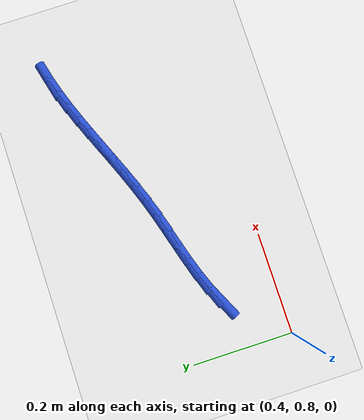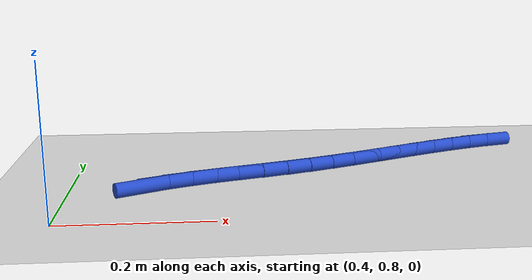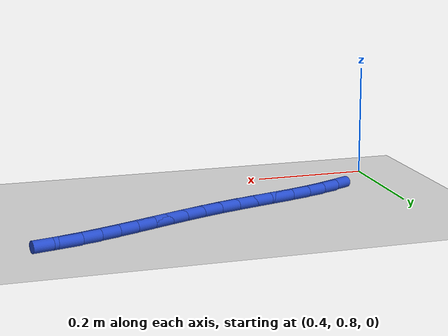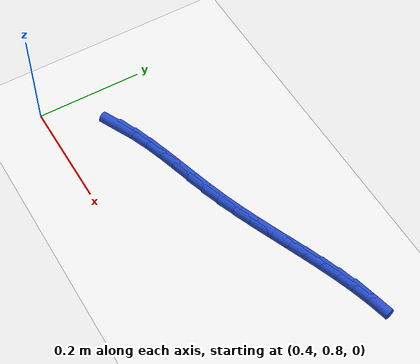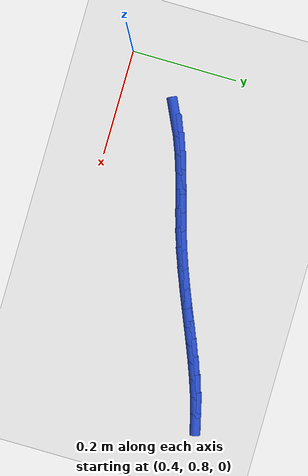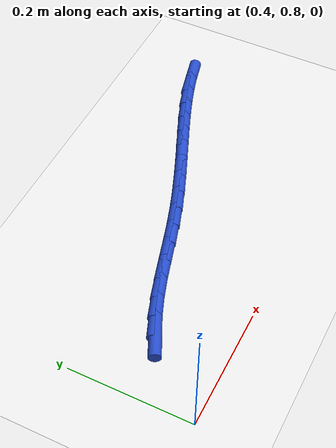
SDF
<sdf version="1.6">
 <world name="default">
  <model name="ground_plane">
   <static>1</static>
   <link name="link">
    <collision name="collision">
     <geometry><plane><normal>0 0 1</normal><size>100 100</size></plane></geometry>
     <surface><friction><ode><mu>100</mu><mu2>50</mu2></ode></friction></surface>
    </collision>
    <visual name="visual">
     <cast_shadows>0</cast_shadows>
     <geometry><plane><normal>0 0 1</normal><size>100 100</size></plane></geometry>
     <material>
      <script><uri>file://media/materials/scripts/gazebo.material</uri><name>Gazebo/WhiteGlow</name></script>
     </material>
    </visual>
   </link>
  </model>
  <model name="line">
   <link name="link_32">
    <pose>0.5011973215342357 0.9113910012589488 0.01 0 1.57 0.4440254572823883</pose>
    <collision name="collision">
     <geometry><cylinder><radius>0.01</radius><length>0.08</length></cylinder></geometry>
    </collision>
    <visual name="visual">
     <material>
      <script><name>Gazebo/Blue</name><uri>file://media/materials/scripts/gazebo.material</uri></script>
     </material>
     <geometry><cylinder><radius>0.01</radius><length>0.08</length></cylinder></geometry>
    </visual>
   </link>
   <link name="link_33">
    <pose>0.5308166340523185 0.9254811311918286 0.01 0 1.57 0.37022620268007017</pose>
    <collision name="collision">
     <geometry><cylinder><radius>0.01</radius><length>0.08</length></cylinder></geometry>
    </collision>
    <visual name="visual">
     <material>
      <script><name>Gazebo/Blue</name><uri>file://media/materials/scripts/gazebo.material</uri></script>
     </material>
     <geometry><cylinder><radius>0.01</radius><length>0.08</length></cylinder></geometry>
    </visual>
   </link>
   <link name="link_34">
    <pose>0.5622957133014537 0.9376988989818918 0.01 0 1.57 0.31965790612082406</pose>
    <collision name="collision">
     <geometry><cylinder><radius>0.01</radius><length>0.08</length></cylinder></geometry>
    </collision>
    <visual name="visual">
     <material>
      <script><name>Gazebo/Blue</name><uri>file://media/materials/scripts/gazebo.material</uri></script>
     </material>
     <geometry><cylinder><radius>0.01</radius><length>0.08</length></cylinder></geometry>
    </visual>
   </link>
   <link name="link_35">
    <pose>0.5951785181569779 0.9485834291795345 0.01 0 1.57 0.28986337622023794</pose>
    <collision name="collision">
     <geometry><cylinder><radius>0.01</radius><length>0.08</length></cylinder></geometry>
    </collision>
    <visual name="visual">
     <material>
      <script><name>Gazebo/Blue</name><uri>file://media/materials/scripts/gazebo.material</uri></script>
     </material>
     <geometry><cylinder><radius>0.01</radius><length>0.08</length></cylinder></geometry>
    </visual>
   </link>
   <link name="link_36">
    <pose>0.6290090074942277 0.9586738463351536 0.01 0 1.57 0.27908347972789876</pose>
    <collision name="collision">
     <geometry><cylinder><radius>0.01</radius><length>0.08</length></cylinder></geometry>
    </collision>
    <visual name="visual">
     <material>
      <script><name>Gazebo/Blue</name><uri>file://media/materials/scripts/gazebo.material</uri></script>
     </material>
     <geometry><cylinder><radius>0.01</radius><length>0.08</length></cylinder></geometry>
    </visual>
   </link>
   <link name="link_37">
    <pose>0.6633311401885407 0.9685092749991465 0.01 0 1.57 0.2864357706763916</pose>
    <collision name="collision">
     <geometry><cylinder><radius>0.01</radius><length>0.08</length></cylinder></geometry>
    </collision>
    <visual name="visual">
     <material>
      <script><name>Gazebo/Blue</name><uri>file://media/materials/scripts/gazebo.material</uri></script>
     </material>
     <geometry><cylinder><radius>0.01</radius><length>0.08</length></cylinder></geometry>
    </visual>
   </link>
   <link name="link_38">
    <pose>0.6976888751152527 0.9786288397219088 0.01 0 1.57 0.3116604961665556</pose>
    <collision name="collision">
     <geometry><cylinder><radius>0.01</radius><length>0.08</length></cylinder></geometry>
    </collision>
    <visual name="visual">
     <material>
      <script><name>Gazebo/Blue</name><uri>file://media/materials/scripts/gazebo.material</uri></script>
     </material>
     <geometry><cylinder><radius>0.01</radius><length>0.08</length></cylinder></geometry>
    </visual>
   </link>
   <link name="link_39">
    <pose>0.7316313652078602 0.9895637306180698 0.01 0 1.57 0.34434486053398616</pose>
    <collision name="collision">
     <geometry><cylinder><radius>0.01</radius><length>0.08</length></cylinder></geometry>
    </collision>
    <visual name="visual">
     <material>
      <script><name>Gazebo/Blue</name><uri>file://media/materials/scripts/gazebo.material</uri></script>
     </material>
     <geometry><cylinder><radius>0.01</radius><length>0.08</length></cylinder></geometry>
    </visual>
   </link>
   <link name="link_40">
    <pose>0.7649299632712534 1.0015057055985463 0.01 0 1.57 0.36966709439179174</pose>
    <collision name="collision">
     <geometry><cylinder><radius>0.01</radius><length>0.08</length></cylinder></geometry>
    </collision>
    <visual name="visual">
     <material>
      <script><name>Gazebo/Blue</name><uri>file://media/materials/scripts/gazebo.material</uri></script>
     </material>
     <geometry><cylinder><radius>0.01</radius><length>0.08</length></cylinder></geometry>
    </visual>
   </link>
   <link name="link_41">
    <pose>0.797656981236301 1.0141867778466038 0.01 0 1.57 0.38636888372217</pose>
    <collision name="collision">
     <geometry><cylinder><radius>0.01</radius><length>0.08</length></cylinder></geometry>
    </collision>
    <visual name="visual">
     <material>
      <script><name>Gazebo/Blue</name><uri>file://media/materials/scripts/gazebo.material</uri></script>
     </material>
     <geometry><cylinder><radius>0.01</radius><length>0.08</length></cylinder></geometry>
    </visual>
   </link>
   <link name="link_42">
    <pose>0.8299061328758303 1.0273062671225364 0.01 0 1.57 0.3942600284666937</pose>
    <collision name="collision">
     <geometry><cylinder><radius>0.01</radius><length>0.08</length></cylinder></geometry>
    </collision>
    <visual name="visual">
     <material>
      <script><name>Gazebo/Blue</name><uri>file://media/materials/scripts/gazebo.material</uri></script>
     </material>
     <geometry><cylinder><radius>0.01</radius><length>0.08</length></cylinder></geometry>
    </visual>
   </link>
   <link name="link_43">
    <pose>0.8617711319626692 1.0405634931866383 0.01 0 1.57 0.39312265436274746</pose>
    <collision name="collision">
     <geometry><cylinder><radius>0.01</radius><length>0.08</length></cylinder></geometry>
    </collision>
    <visual name="visual">
     <material>
      <script><name>Gazebo/Blue</name><uri>file://media/materials/scripts/gazebo.material</uri></script>
     </material>
     <geometry><cylinder><radius>0.01</radius><length>0.08</length></cylinder></geometry>
    </visual>
   </link>
   <link name="link_44">
    <pose>0.8933456922696452 1.0536577757992052 0.01 0 1.57 0.3826893158773114</pose>
    <collision name="collision">
     <geometry><cylinder><radius>0.01</radius><length>0.08</length></cylinder></geometry>
    </collision>
    <visual name="visual">
     <material>
      <script><name>Gazebo/Blue</name><uri>file://media/materials/scripts/gazebo.material</uri></script>
     </material>
     <geometry><cylinder><radius>0.01</radius><length>0.08</length></cylinder></geometry>
    </visual>
   </link>
   <link name="link_45">
    <pose>0.9247235275695861 1.0662884347205301 0.01 0 1.57 0.3626418083650684</pose>
    <collision name="collision">
     <geometry><cylinder><radius>0.01</radius><length>0.08</length></cylinder></geometry>
    </collision>
    <visual name="visual">
     <material>
      <script><name>Gazebo/Blue</name><uri>file://media/materials/scripts/gazebo.material</uri></script>
     </material>
     <geometry><cylinder><radius>0.01</radius><length>0.08</length></cylinder></geometry>
    </visual>
   </link>
   <link name="link_46">
    <pose>0.9559983516353194 1.0781547897109087 0.01 0 1.57 0.33263547977446745</pose>
    <collision name="collision">
     <geometry><cylinder><radius>0.01</radius><length>0.08</length></cylinder></geometry>
    </collision>
    <visual name="visual">
     <material>
      <script><name>Gazebo/Blue</name><uri>file://media/materials/scripts/gazebo.material</uri></script>
     </material>
     <geometry><cylinder><radius>0.01</radius><length>0.08</length></cylinder></geometry>
    </visual>
   </link>
   <link name="link_47">
    <pose>0.9872638782396724 1.0889561605306346 0.01 0 1.57 0.29235565163840377</pose>
    <collision name="collision">
     <geometry><cylinder><radius>0.01</radius><length>0.08</length></cylinder></geometry>
    </collision>
    <visual name="visual">
     <material>
      <script><name>Gazebo/Blue</name><uri>file://media/materials/scripts/gazebo.material</uri></script>
     </material>
     <geometry><cylinder><radius>0.01</radius><length>0.08</length></cylinder></geometry>
    </visual>
   </link>
   <link name="link_48">
    <pose>1.018613821155473 1.0983918669400026 0.01 0 1.57 0.2416128228604303</pose>
    <collision name="collision">
     <geometry><cylinder><radius>0.01</radius><length>0.08</length></cylinder></geometry>
    </collision>
    <visual name="visual">
     <material>
      <script><name>Gazebo/Blue</name><uri>file://media/materials/scripts/gazebo.material</uri></script>
     </material>
     <geometry><cylinder><radius>0.01</radius><length>0.08</length></cylinder></geometry>
    </visual>
   </link>
  </model>
 </world>
</sdf>
